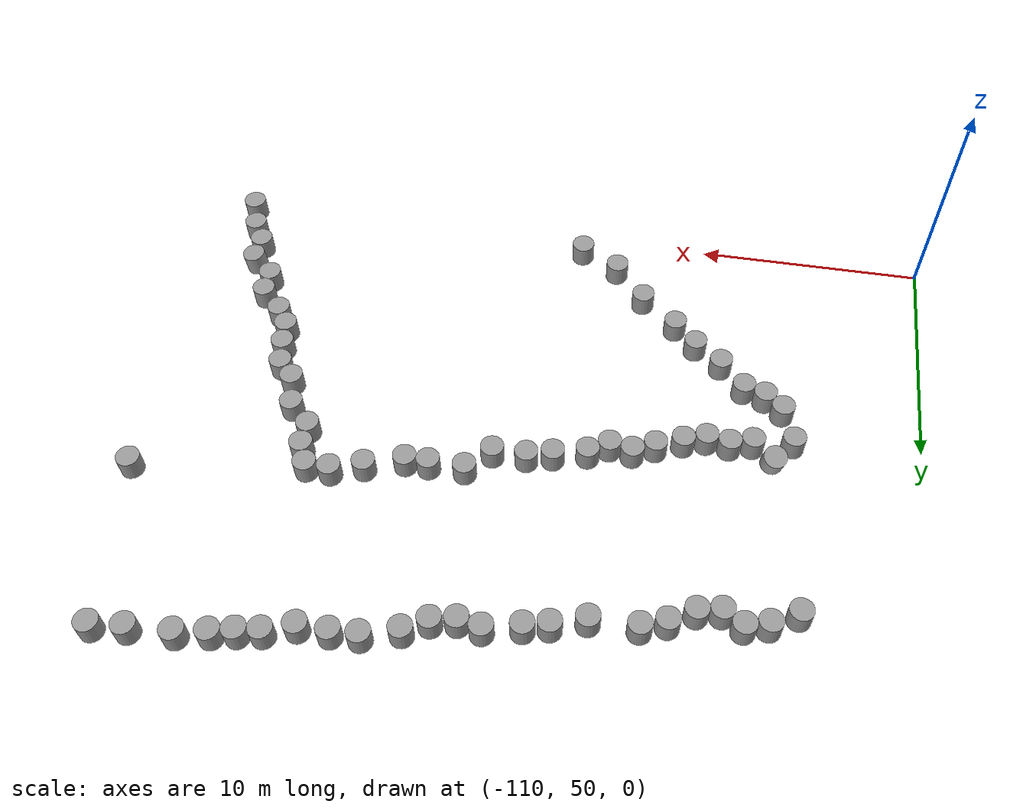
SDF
<sdf version="1.7">
 <world name="default">
  <model name="unit_cylinder_85_clone_38">
   <pose>-77.0767 65.8632 0.450095 4.5e-05 -0.000158 0.005555</pose>
   <link name="link">
    <inertial>
     <mass>1</mass>
     <inertia><ixx>0.145833</ixx><ixy>0</ixy><ixz>0</ixz><iyy>0.145833</iyy><iyz>0</iyz><izz>0.125</izz></inertia>
    </inertial>
    <collision name="collision">
     <geometry><cylinder><radius>0.5</radius><length>1</length></cylinder></geometry>
    </collision>
    <visual name="visual">
     <geometry><cylinder><radius>0.5</radius><length>1</length></cylinder></geometry>
     <material>
      <script><name>Gazebo/Grey</name><uri>file://media/materials/scripts/gazebo.material</uri></script>
     </material>
    </visual>
   </link>
  </model>
  <model name="unit_cylinder_85_clone_40">
   <pose>-84.3912 64.9055 0.449998 -5e-06 -1e-06 0.001921</pose>
   <link name="link">
    <inertial>
     <mass>1</mass>
     <inertia><ixx>0.145833</ixx><ixy>0</ixy><ixz>0</ixz><iyy>0.145833</iyy><iyz>0</iyz><izz>0.125</izz></inertia>
    </inertial>
    <collision name="collision">
     <geometry><cylinder><radius>0.5</radius><length>1</length></cylinder></geometry>
    </collision>
    <visual name="visual">
     <geometry><cylinder><radius>0.5</radius><length>1</length></cylinder></geometry>
     <material>
      <script><name>Gazebo/Grey</name><uri>file://media/materials/scripts/gazebo.material</uri></script>
     </material>
    </visual>
   </link>
  </model>
  <model name="unit_cylinder_85_clone_41">
   <pose>-85.4436 64.9334 0.449996 0 -4e-06 0.000119</pose>
   <link name="link">
    <inertial>
     <mass>1</mass>
     <inertia><ixx>0.145833</ixx><ixy>0</ixy><ixz>0</ixz><iyy>0.145833</iyy><iyz>0</iyz><izz>0.125</izz></inertia>
    </inertial>
    <collision name="collision">
     <geometry><cylinder><radius>0.5</radius><length>1</length></cylinder></geometry>
    </collision>
    <visual name="visual">
     <geometry><cylinder><radius>0.5</radius><length>1</length></cylinder></geometry>
     <material>
      <script><name>Gazebo/Grey</name><uri>file://media/materials/scripts/gazebo.material</uri></script>
     </material>
    </visual>
   </link>
  </model>
  <model name="unit_cylinder_85_clone_42">
   <pose>-86.8078 64.4998 0.449993 -2e-06 -1e-06 0.000111</pose>
   <link name="link">
    <inertial>
     <mass>1</mass>
     <inertia><ixx>0.145833</ixx><ixy>0</ixy><ixz>0</ixz><iyy>0.145833</iyy><iyz>0</iyz><izz>0.125</izz></inertia>
    </inertial>
    <collision name="collision">
     <geometry><cylinder><radius>0.5</radius><length>1</length></cylinder></geometry>
    </collision>
    <visual name="visual">
     <geometry><cylinder><radius>0.5</radius><length>1</length></cylinder></geometry>
     <material>
      <script><name>Gazebo/Grey</name><uri>file://media/materials/scripts/gazebo.material</uri></script>
     </material>
    </visual>
   </link>
  </model>
  <model name="unit_cylinder_85_clone_93">
   <pose>-78.1296 73.1813 0.452011 0.005202 0.000717 0.00035</pose>
   <link name="link">
    <inertial>
     <mass>1</mass>
     <inertia><ixx>0.145833</ixx><ixy>0</ixy><ixz>0</ixz><iyy>0.145833</iyy><iyz>0</iyz><izz>0.125</izz></inertia>
    </inertial>
    <collision name="collision">
     <geometry><cylinder><radius>0.5</radius><length>1</length></cylinder></geometry>
    </collision>
    <visual name="visual">
     <geometry><cylinder><radius>0.5</radius><length>1</length></cylinder></geometry>
     <material>
      <script><name>Gazebo/Grey</name><uri>file://media/materials/scripts/gazebo.material</uri></script>
     </material>
    </visual>
   </link>
  </model>
  <model name="unit_cylinder_85_clone_94">
   <pose>-79.5591 73.0627 0.45245 0.005256 0.000747 -0.00341</pose>
   <link name="link">
    <inertial>
     <mass>1</mass>
     <inertia><ixx>0.145833</ixx><ixy>0</ixy><ixz>0</ixz><iyy>0.145833</iyy><iyz>0</iyz><izz>0.125</izz></inertia>
    </inertial>
    <collision name="collision">
     <geometry><cylinder><radius>0.5</radius><length>1</length></cylinder></geometry>
    </collision>
    <visual name="visual">
     <geometry><cylinder><radius>0.5</radius><length>1</length></cylinder></geometry>
     <material>
      <script><name>Gazebo/Grey</name><uri>file://media/materials/scripts/gazebo.material</uri></script>
     </material>
    </visual>
   </link>
  </model>
  <model name="unit_cylinder_85_clone_95">
   <pose>-81.4504 72.9943 0.453279 0.005861 0.000808 0.000311</pose>
   <link name="link">
    <inertial>
     <mass>1</mass>
     <inertia><ixx>0.145833</ixx><ixy>0</ixy><ixz>0</ixz><iyy>0.145833</iyy><iyz>0</iyz><izz>0.125</izz></inertia>
    </inertial>
    <collision name="collision">
     <geometry><cylinder><radius>0.5</radius><length>1</length></cylinder></geometry>
    </collision>
    <visual name="visual">
     <geometry><cylinder><radius>0.5</radius><length>1</length></cylinder></geometry>
     <material>
      <script><name>Gazebo/Grey</name><uri>file://media/materials/scripts/gazebo.material</uri></script>
     </material>
    </visual>
   </link>
  </model>
  <model name="unit_cylinder_85_clone_97">
   <pose>-82.7922 72.7832 0.453133 0.005865 0.000798 0.002741</pose>
   <link name="link">
    <inertial>
     <mass>1</mass>
     <inertia><ixx>0.145833</ixx><ixy>0</ixy><ixz>0</ixz><iyy>0.145833</iyy><iyz>0</iyz><izz>0.125</izz></inertia>
    </inertial>
    <collision name="collision">
     <geometry><cylinder><radius>0.5</radius><length>1</length></cylinder></geometry>
    </collision>
    <visual name="visual">
     <geometry><cylinder><radius>0.5</radius><length>1</length></cylinder></geometry>
     <material>
      <script><name>Gazebo/Grey</name><uri>file://media/materials/scripts/gazebo.material</uri></script>
     </material>
    </visual>
   </link>
  </model>
  <model name="unit_cylinder_85_clone_96">
   <pose>-83.7734 72.5809 0.452863 0.005707 0.000753 0.032683</pose>
   <link name="link">
    <inertial>
     <mass>1</mass>
     <inertia><ixx>0.145833</ixx><ixy>0</ixy><ixz>0</ixz><iyy>0.145833</iyy><iyz>0</iyz><izz>0.125</izz></inertia>
    </inertial>
    <collision name="collision">
     <geometry><cylinder><radius>0.5</radius><length>1</length></cylinder></geometry>
    </collision>
    <visual name="visual">
     <geometry><cylinder><radius>0.5</radius><length>1</length></cylinder></geometry>
     <material>
      <script><name>Gazebo/Grey</name><uri>file://media/materials/scripts/gazebo.material</uri></script>
     </material>
    </visual>
   </link>
  </model>
  <model name="unit_cylinder_85_clone_98">
   <pose>-84.7607 72.4217 0.452878 0.005671 0.001085 -0.028994</pose>
   <link name="link">
    <inertial>
     <mass>1</mass>
     <inertia><ixx>0.145833</ixx><ixy>0</ixy><ixz>0</ixz><iyy>0.145833</iyy><iyz>0</iyz><izz>0.125</izz></inertia>
    </inertial>
    <collision name="collision">
     <geometry><cylinder><radius>0.5</radius><length>1</length></cylinder></geometry>
    </collision>
    <visual name="visual">
     <geometry><cylinder><radius>0.5</radius><length>1</length></cylinder></geometry>
     <material>
      <script><name>Gazebo/Grey</name><uri>file://media/materials/scripts/gazebo.material</uri></script>
     </material>
    </visual>
   </link>
  </model>
  <model name="unit_cylinder_85_clone_99">
   <pose>-85.9993 71.9964 0.451872 0.005151 0.000846 0.000488</pose>
   <link name="link">
    <inertial>
     <mass>1</mass>
     <inertia><ixx>0.145833</ixx><ixy>0</ixy><ixz>0</ixz><iyy>0.145833</iyy><iyz>0</iyz><izz>0.125</izz></inertia>
    </inertial>
    <collision name="collision">
     <geometry><cylinder><radius>0.5</radius><length>1</length></cylinder></geometry>
    </collision>
    <visual name="visual">
     <geometry><cylinder><radius>0.5</radius><length>1</length></cylinder></geometry>
     <material>
      <script><name>Gazebo/Grey</name><uri>file://media/materials/scripts/gazebo.material</uri></script>
     </material>
    </visual>
   </link>
  </model>
  <model name="unit_cylinder_85_clone_100">
   <pose>-87.3008 72.0388 0.45302 0.00583 0.000957 0.001585</pose>
   <link name="link">
    <inertial>
     <mass>1</mass>
     <inertia><ixx>0.145833</ixx><ixy>0</ixy><ixz>0</ixz><iyy>0.145833</iyy><iyz>0</iyz><izz>0.125</izz></inertia>
    </inertial>
    <collision name="collision">
     <geometry><cylinder><radius>0.5</radius><length>1</length></cylinder></geometry>
    </collision>
    <visual name="visual">
     <geometry><cylinder><radius>0.5</radius><length>1</length></cylinder></geometry>
     <material>
      <script><name>Gazebo/Grey</name><uri>file://media/materials/scripts/gazebo.material</uri></script>
     </material>
    </visual>
   </link>
  </model>
  <model name="unit_cylinder_85_clone_101">
   <pose>-88.4749 71.9945 0.4539 0.00583 0.000962 8.6e-05</pose>
   <link name="link">
    <inertial>
     <mass>1</mass>
     <inertia><ixx>0.145833</ixx><ixy>0</ixy><ixz>0</ixz><iyy>0.145833</iyy><iyz>0</iyz><izz>0.125</izz></inertia>
    </inertial>
    <collision name="collision">
     <geometry><cylinder><radius>0.5</radius><length>1</length></cylinder></geometry>
    </collision>
    <visual name="visual">
     <geometry><cylinder><radius>0.5</radius><length>1</length></cylinder></geometry>
     <material>
      <script><name>Gazebo/Grey</name><uri>file://media/materials/scripts/gazebo.material</uri></script>
     </material>
    </visual>
   </link>
  </model>
  <model name="unit_cylinder_85_clone_102">
   <pose>-89.9998 71.555 0.452877 0.005696 0.000924 -0.000299</pose>
   <link name="link">
    <inertial>
     <mass>1</mass>
     <inertia><ixx>0.145833</ixx><ixy>0</ixy><ixz>0</ixz><iyy>0.145833</iyy><iyz>0</iyz><izz>0.125</izz></inertia>
    </inertial>
    <collision name="collision">
     <geometry><cylinder><radius>0.5</radius><length>1</length></cylinder></geometry>
    </collision>
    <visual name="visual">
     <geometry><cylinder><radius>0.5</radius><length>1</length></cylinder></geometry>
     <material>
      <script><name>Gazebo/Grey</name><uri>file://media/materials/scripts/gazebo.material</uri></script>
     </material>
    </visual>
   </link>
  </model>
  <model name="unit_cylinder_85_clone_103">
   <pose>-90.9994 70.9965 0.45094 0.004983 0.000818 0.000192</pose>
   <link name="link">
    <inertial>
     <mass>1</mass>
     <inertia><ixx>0.145833</ixx><ixy>0</ixy><ixz>0</ixz><iyy>0.145833</iyy><iyz>0</iyz><izz>0.125</izz></inertia>
    </inertial>
    <collision name="collision">
     <geometry><cylinder><radius>0.5</radius><length>1</length></cylinder></geometry>
    </collision>
    <visual name="visual">
     <geometry><cylinder><radius>0.5</radius><length>1</length></cylinder></geometry>
     <material>
      <script><name>Gazebo/Grey</name><uri>file://media/materials/scripts/gazebo.material</uri></script>
     </material>
    </visual>
   </link>
  </model>
  <model name="unit_cylinder_85_clone_104">
   <pose>-92.0321 70.8148 0.450942 0.004951 0.000957 7.1e-05</pose>
   <link name="link">
    <inertial>
     <mass>1</mass>
     <inertia><ixx>0.145833</ixx><ixy>0</ixy><ixz>0</ixz><iyy>0.145833</iyy><iyz>0</iyz><izz>0.125</izz></inertia>
    </inertial>
    <collision name="collision">
     <geometry><cylinder><radius>0.5</radius><length>1</length></cylinder></geometry>
    </collision>
    <visual name="visual">
     <geometry><cylinder><radius>0.5</radius><length>1</length></cylinder></geometry>
     <material>
      <script><name>Gazebo/Grey</name><uri>file://media/materials/scripts/gazebo.material</uri></script>
     </material>
    </visual>
   </link>
  </model>
  <model name="unit_cylinder_85_clone_105">
   <pose>-93.0194 70.9973 0.452823 0.005547 0.001132 -0.005779</pose>
   <link name="link">
    <inertial>
     <mass>1</mass>
     <inertia><ixx>0.145833</ixx><ixy>0</ixy><ixz>0</ixz><iyy>0.145833</iyy><iyz>0</iyz><izz>0.125</izz></inertia>
    </inertial>
    <collision name="collision">
     <geometry><cylinder><radius>0.5</radius><length>1</length></cylinder></geometry>
    </collision>
    <visual name="visual">
     <geometry><cylinder><radius>0.5</radius><length>1</length></cylinder></geometry>
     <material>
      <script><name>Gazebo/Grey</name><uri>file://media/materials/scripts/gazebo.material</uri></script>
     </material>
    </visual>
   </link>
  </model>
  <model name="unit_cylinder_85_clone_106">
   <pose>-94.5551 70.6722 0.452749 0.005421 0.001063 0.000281</pose>
   <link name="link">
    <inertial>
     <mass>1</mass>
     <inertia><ixx>0.145833</ixx><ixy>0</ixy><ixz>0</ixz><iyy>0.145833</iyy><iyz>0</iyz><izz>0.125</izz></inertia>
    </inertial>
    <collision name="collision">
     <geometry><cylinder><radius>0.5</radius><length>1</length></cylinder></geometry>
    </collision>
    <visual name="visual">
     <geometry><cylinder><radius>0.5</radius><length>1</length></cylinder></geometry>
     <material>
      <script><name>Gazebo/Grey</name><uri>file://media/materials/scripts/gazebo.material</uri></script>
     </material>
    </visual>
   </link>
  </model>
  <model name="unit_cylinder_85_clone_107">
   <pose>-95.583 70.443 0.452675 0.005259 0.001063 -0.002305</pose>
   <link name="link">
    <inertial>
     <mass>1</mass>
     <inertia><ixx>0.145833</ixx><ixy>0</ixy><ixz>0</ixz><iyy>0.145833</iyy><iyz>0</iyz><izz>0.125</izz></inertia>
    </inertial>
    <collision name="collision">
     <geometry><cylinder><radius>0.5</radius><length>1</length></cylinder></geometry>
    </collision>
    <visual name="visual">
     <geometry><cylinder><radius>0.5</radius><length>1</length></cylinder></geometry>
     <material>
      <script><name>Gazebo/Grey</name><uri>file://media/materials/scripts/gazebo.material</uri></script>
     </material>
    </visual>
   </link>
  </model>
  <model name="unit_cylinder_85_clone_108">
   <pose>-96.9992 69.9965 0.451776 0.005114 0.001002 0.000523</pose>
   <link name="link">
    <inertial>
     <mass>1</mass>
     <inertia><ixx>0.145833</ixx><ixy>0</ixy><ixz>0</ixz><iyy>0.145833</iyy><iyz>0</iyz><izz>0.125</izz></inertia>
    </inertial>
    <collision name="collision">
     <geometry><cylinder><radius>0.5</radius><length>1</length></cylinder></geometry>
    </collision>
    <visual name="visual">
     <geometry><cylinder><radius>0.5</radius><length>1</length></cylinder></geometry>
     <material>
      <script><name>Gazebo/Grey</name><uri>file://media/materials/scripts/gazebo.material</uri></script>
     </material>
    </visual>
   </link>
  </model>
  <model name="unit_cylinder_85_clone_109">
   <pose>-98.9985 69.9948 0.453684 0.005804 0.001133 0.00109</pose>
   <link name="link">
    <inertial>
     <mass>1</mass>
     <inertia><ixx>0.145833</ixx><ixy>0</ixy><ixz>0</ixz><iyy>0.145833</iyy><iyz>0</iyz><izz>0.125</izz></inertia>
    </inertial>
    <collision name="collision">
     <geometry><cylinder><radius>0.5</radius><length>1</length></cylinder></geometry>
    </collision>
    <visual name="visual">
     <geometry><cylinder><radius>0.5</radius><length>1</length></cylinder></geometry>
     <material>
      <script><name>Gazebo/Grey</name><uri>file://media/materials/scripts/gazebo.material</uri></script>
     </material>
    </visual>
   </link>
  </model>
  <model name="unit_cylinder_85_clone_110">
   <pose>-100.04 69.632 0.452863 0.005634 0.001106 0.001092</pose>
   <link name="link">
    <inertial>
     <mass>1</mass>
     <inertia><ixx>0.145833</ixx><ixy>0</ixy><ixz>0</ixz><iyy>0.145833</iyy><iyz>0</iyz><izz>0.125</izz></inertia>
    </inertial>
    <collision name="collision">
     <geometry><cylinder><radius>0.5</radius><length>1</length></cylinder></geometry>
    </collision>
    <visual name="visual">
     <geometry><cylinder><radius>0.5</radius><length>1</length></cylinder></geometry>
     <material>
      <script><name>Gazebo/Grey</name><uri>file://media/materials/scripts/gazebo.material</uri></script>
     </material>
    </visual>
   </link>
  </model>
  <model name="unit_cylinder_85_clone_111">
   <pose>-101.092 69.0269 0.450905 0.00376 0.00334 -0.52853</pose>
   <link name="link">
    <inertial>
     <mass>1</mass>
     <inertia><ixx>0.145833</ixx><ixy>0</ixy><ixz>0</ixz><iyy>0.145833</iyy><iyz>0</iyz><izz>0.125</izz></inertia>
    </inertial>
    <collision name="collision">
     <geometry><cylinder><radius>0.5</radius><length>1</length></cylinder></geometry>
    </collision>
    <visual name="visual">
     <geometry><cylinder><radius>0.5</radius><length>1</length></cylinder></geometry>
     <material>
      <script><name>Gazebo/Grey</name><uri>file://media/materials/scripts/gazebo.material</uri></script>
     </material>
    </visual>
   </link>
  </model>
  <model name="unit_cylinder_85_clone_112">
   <pose>-102.079 68.8682 0.451231 0.004764 0.003261 -0.405672</pose>
   <link name="link">
    <inertial>
     <mass>1</mass>
     <inertia><ixx>0.145833</ixx><ixy>0</ixy><ixz>0</ixz><iyy>0.145833</iyy><iyz>0</iyz><izz>0.125</izz></inertia>
    </inertial>
    <collision name="collision">
     <geometry><cylinder><radius>0.5</radius><length>1</length></cylinder></geometry>
    </collision>
    <visual name="visual">
     <geometry><cylinder><radius>0.5</radius><length>1</length></cylinder></geometry>
     <material>
      <script><name>Gazebo/Grey</name><uri>file://media/materials/scripts/gazebo.material</uri></script>
     </material>
    </visual>
   </link>
  </model>
  <model name="unit_cylinder_85_clone_113">
   <pose>-102.942 69.3733 0.454615 0.005033 0.002991 -0.356805</pose>
   <link name="link">
    <inertial>
     <mass>1</mass>
     <inertia><ixx>0.145833</ixx><ixy>0</ixy><ixz>0</ixz><iyy>0.145833</iyy><iyz>0</iyz><izz>0.125</izz></inertia>
    </inertial>
    <collision name="collision">
     <geometry><cylinder><radius>0.5</radius><length>1</length></cylinder></geometry>
    </collision>
    <visual name="visual">
     <geometry><cylinder><radius>0.5</radius><length>1</length></cylinder></geometry>
     <material>
      <script><name>Gazebo/Grey</name><uri>file://media/materials/scripts/gazebo.material</uri></script>
     </material>
    </visual>
   </link>
  </model>
  <model name="unit_cylinder_85_clone_114">
   <pose>-103.922 69.1334 0.454307 0.00588 0.000645 0.084282</pose>
   <link name="link">
    <inertial>
     <mass>1</mass>
     <inertia><ixx>0.145833</ixx><ixy>0</ixy><ixz>0</ixz><iyy>0.145833</iyy><iyz>0</iyz><izz>0.125</izz></inertia>
    </inertial>
    <collision name="collision">
     <geometry><cylinder><radius>0.5</radius><length>1</length></cylinder></geometry>
    </collision>
    <visual name="visual">
     <geometry><cylinder><radius>0.5</radius><length>1</length></cylinder></geometry>
     <material>
      <script><name>Gazebo/Grey</name><uri>file://media/materials/scripts/gazebo.material</uri></script>
     </material>
    </visual>
   </link>
  </model>
  <model name="unit_cylinder_85_clone_115">
   <pose>-105.056 68.5035 0.452269 0.005151 0.001088 -0.007741</pose>
   <link name="link">
    <inertial>
     <mass>1</mass>
     <inertia><ixx>0.145833</ixx><ixy>0</ixy><ixz>0</ixz><iyy>0.145833</iyy><iyz>0</iyz><izz>0.125</izz></inertia>
    </inertial>
    <collision name="collision">
     <geometry><cylinder><radius>0.5</radius><length>1</length></cylinder></geometry>
    </collision>
    <visual name="visual">
     <geometry><cylinder><radius>0.5</radius><length>1</length></cylinder></geometry>
     <material>
      <script><name>Gazebo/Grey</name><uri>file://media/materials/scripts/gazebo.material</uri></script>
     </material>
    </visual>
   </link>
  </model>
  <model name="unit_cylinder_85_clone_117">
   <pose>-88.4563 63.9931 0.45 0 -0 0.011272</pose>
   <link name="link">
    <inertial>
     <mass>1</mass>
     <inertia><ixx>0.145833</ixx><ixy>0</ixy><ixz>0</ixz><iyy>0.145833</iyy><iyz>0</iyz><izz>0.125</izz></inertia>
    </inertial>
    <collision name="collision">
     <geometry><cylinder><radius>0.5</radius><length>1</length></cylinder></geometry>
    </collision>
    <visual name="visual">
     <geometry><cylinder><radius>0.5</radius><length>1</length></cylinder></geometry>
     <material>
      <script><name>Gazebo/Grey</name><uri>file://media/materials/scripts/gazebo.material</uri></script>
     </material>
    </visual>
   </link>
  </model>
  <model name="unit_cylinder_85_clone_118">
   <pose>-89.4563 63.9946 0.449991 -0 -0 -0.012185</pose>
   <link name="link">
    <inertial>
     <mass>1</mass>
     <inertia><ixx>0.145833</ixx><ixy>0</ixy><ixz>0</ixz><iyy>0.145833</iyy><iyz>0</iyz><izz>0.125</izz></inertia>
    </inertial>
    <collision name="collision">
     <geometry><cylinder><radius>0.5</radius><length>1</length></cylinder></geometry>
    </collision>
    <visual name="visual">
     <geometry><cylinder><radius>0.5</radius><length>1</length></cylinder></geometry>
     <material>
      <script><name>Gazebo/Grey</name><uri>file://media/materials/scripts/gazebo.material</uri></script>
     </material>
    </visual>
   </link>
  </model>
  <model name="unit_cylinder_85_clone_119">
   <pose>-91.0001 64.0005 0.450021 -7.2e-05 2e-05 0.001624</pose>
   <link name="link">
    <inertial>
     <mass>1</mass>
     <inertia><ixx>0.145833</ixx><ixy>0</ixy><ixz>0</ixz><iyy>0.145833</iyy><iyz>0</iyz><izz>0.125</izz></inertia>
    </inertial>
    <collision name="collision">
     <geometry><cylinder><radius>0.5</radius><length>1</length></cylinder></geometry>
    </collision>
    <visual name="visual">
     <geometry><cylinder><radius>0.5</radius><length>1</length></cylinder></geometry>
     <material>
      <script><name>Gazebo/Grey</name><uri>file://media/materials/scripts/gazebo.material</uri></script>
     </material>
    </visual>
   </link>
  </model>
  <model name="unit_cylinder_85_clone_120">
   <pose>-91.9996 63.0003 0.450116 -4.4e-05 6.9e-05 0.000724</pose>
   <link name="link">
    <inertial>
     <mass>1</mass>
     <inertia><ixx>0.145833</ixx><ixy>0</ixy><ixz>0</ixz><iyy>0.145833</iyy><iyz>0</iyz><izz>0.125</izz></inertia>
    </inertial>
    <collision name="collision">
     <geometry><cylinder><radius>0.5</radius><length>1</length></cylinder></geometry>
    </collision>
    <visual name="visual">
     <geometry><cylinder><radius>0.5</radius><length>1</length></cylinder></geometry>
     <material>
      <script><name>Gazebo/Grey</name><uri>file://media/materials/scripts/gazebo.material</uri></script>
     </material>
    </visual>
   </link>
  </model>
  <model name="unit_cylinder_85_clone_121">
   <pose>-93.4527 63.0001 0.450234 -5e-05 7.8e-05 0.000248</pose>
   <link name="link">
    <inertial>
     <mass>1</mass>
     <inertia><ixx>0.145833</ixx><ixy>0</ixy><ixz>0</ixz><iyy>0.145833</iyy><iyz>0</iyz><izz>0.125</izz></inertia>
    </inertial>
    <collision name="collision">
     <geometry><cylinder><radius>0.5</radius><length>1</length></cylinder></geometry>
    </collision>
    <visual name="visual">
     <geometry><cylinder><radius>0.5</radius><length>1</length></cylinder></geometry>
     <material>
      <script><name>Gazebo/Grey</name><uri>file://media/materials/scripts/gazebo.material</uri></script>
     </material>
    </visual>
   </link>
  </model>
  <model name="unit_cylinder_85_clone_122">
   <pose>-94.5421 62.754 0.450328 -5e-05 7.3e-05 -0.023637</pose>
   <link name="link">
    <inertial>
     <mass>1</mass>
     <inertia><ixx>0.145833</ixx><ixy>0</ixy><ixz>0</ixz><iyy>0.145833</iyy><iyz>0</iyz><izz>0.125</izz></inertia>
    </inertial>
    <collision name="collision">
     <geometry><cylinder><radius>0.5</radius><length>1</length></cylinder></geometry>
    </collision>
    <visual name="visual">
     <geometry><cylinder><radius>0.5</radius><length>1</length></cylinder></geometry>
     <material>
      <script><name>Gazebo/Grey</name><uri>file://media/materials/scripts/gazebo.material</uri></script>
     </material>
    </visual>
   </link>
  </model>
  <model name="unit_cylinder_85_clone_124">
   <pose>-95.9769 62.4281 0.450394 -0.000743 -6.2e-05 0.0949</pose>
   <link name="link">
    <inertial>
     <mass>1</mass>
     <inertia><ixx>0.145833</ixx><ixy>0</ixy><ixz>0</ixz><iyy>0.145833</iyy><iyz>0</iyz><izz>0.125</izz></inertia>
    </inertial>
    <collision name="collision">
     <geometry><cylinder><radius>0.5</radius><length>1</length></cylinder></geometry>
    </collision>
    <visual name="visual">
     <geometry><cylinder><radius>0.5</radius><length>1</length></cylinder></geometry>
     <material>
      <script><name>Gazebo/Grey</name><uri>file://media/materials/scripts/gazebo.material</uri></script>
     </material>
    </visual>
   </link>
  </model>
  <model name="unit_cylinder_85_clone_125">
   <pose>-96.8488 61.9373 0.450539 -4.8e-05 7.1e-05 -0.02449</pose>
   <link name="link">
    <inertial>
     <mass>1</mass>
     <inertia><ixx>0.145833</ixx><ixy>0</ixy><ixz>0</ixz><iyy>0.145833</iyy><iyz>0</iyz><izz>0.125</izz></inertia>
    </inertial>
    <collision name="collision">
     <geometry><cylinder><radius>0.5</radius><length>1</length></cylinder></geometry>
    </collision>
    <visual name="visual">
     <geometry><cylinder><radius>0.5</radius><length>1</length></cylinder></geometry>
     <material>
      <script><name>Gazebo/Grey</name><uri>file://media/materials/scripts/gazebo.material</uri></script>
     </material>
    </visual>
   </link>
  </model>
  <model name="unit_cylinder_85_clone_126">
   <pose>-97.8363 62.0978 0.450337 -0.000773 -0.000198 -0.010846</pose>
   <link name="link">
    <inertial>
     <mass>1</mass>
     <inertia><ixx>0.145833</ixx><ixy>0</ixy><ixz>0</ixz><iyy>0.145833</iyy><iyz>0</iyz><izz>0.125</izz></inertia>
    </inertial>
    <collision name="collision">
     <geometry><cylinder><radius>0.5</radius><length>1</length></cylinder></geometry>
    </collision>
    <visual name="visual">
     <geometry><cylinder><radius>0.5</radius><length>1</length></cylinder></geometry>
     <material>
      <script><name>Gazebo/Grey</name><uri>file://media/materials/scripts/gazebo.material</uri></script>
     </material>
    </visual>
   </link>
  </model>
  <model name="unit_cylinder_85_clone_123">
   <pose>-98.7707 61.6638 0.450486 -0.000877 -0.000202 0.000233</pose>
   <link name="link">
    <inertial>
     <mass>1</mass>
     <inertia><ixx>0.145833</ixx><ixy>0</ixy><ixz>0</ixz><iyy>0.145833</iyy><iyz>0</iyz><izz>0.125</izz></inertia>
    </inertial>
    <collision name="collision">
     <geometry><cylinder><radius>0.5</radius><length>1</length></cylinder></geometry>
    </collision>
    <visual name="visual">
     <geometry><cylinder><radius>0.5</radius><length>1</length></cylinder></geometry>
     <material>
      <script><name>Gazebo/Grey</name><uri>file://media/materials/scripts/gazebo.material</uri></script>
     </material>
    </visual>
   </link>
  </model>
  <model name="unit_cylinder_85_clone_127">
   <pose>-99.9095 61.2462 0.450619 -0.000884 -0.000186 0.019566</pose>
   <link name="link">
    <inertial>
     <mass>1</mass>
     <inertia><ixx>0.145833</ixx><ixy>0</ixy><ixz>0</ixz><iyy>0.145833</iyy><iyz>0</iyz><izz>0.125</izz></inertia>
    </inertial>
    <collision name="collision">
     <geometry><cylinder><radius>0.5</radius><length>1</length></cylinder></geometry>
    </collision>
    <visual name="visual">
     <geometry><cylinder><radius>0.5</radius><length>1</length></cylinder></geometry>
     <material>
      <script><name>Gazebo/Grey</name><uri>file://media/materials/scripts/gazebo.material</uri></script>
     </material>
    </visual>
   </link>
  </model>
  <model name="unit_cylinder_85_clone_128">
   <pose>-100.877 60.961 0.450673 -0.000882 -0.000212 -0.014753</pose>
   <link name="link">
    <inertial>
     <mass>1</mass>
     <inertia><ixx>0.145833</ixx><ixy>0</ixy><ixz>0</ixz><iyy>0.145833</iyy><iyz>0</iyz><izz>0.125</izz></inertia>
    </inertial>
    <collision name="collision">
     <geometry><cylinder><radius>0.5</radius><length>1</length></cylinder></geometry>
    </collision>
    <visual name="visual">
     <geometry><cylinder><radius>0.5</radius><length>1</length></cylinder></geometry>
     <material>
      <script><name>Gazebo/Grey</name><uri>file://media/materials/scripts/gazebo.material</uri></script>
     </material>
    </visual>
   </link>
  </model>
  <model name="unit_cylinder_85_clone_129">
   <pose>-101.867 61.1022 0.450404 -0.000778 -0.000215 -0.051182</pose>
   <link name="link">
    <inertial>
     <mass>1</mass>
     <inertia><ixx>0.145833</ixx><ixy>0</ixy><ixz>0</ixz><iyy>0.145833</iyy><iyz>0</iyz><izz>0.125</izz></inertia>
    </inertial>
    <collision name="collision">
     <geometry><cylinder><radius>0.5</radius><length>1</length></cylinder></geometry>
    </collision>
    <visual name="visual">
     <geometry><cylinder><radius>0.5</radius><length>1</length></cylinder></geometry>
     <material>
      <script><name>Gazebo/Grey</name><uri>file://media/materials/scripts/gazebo.material</uri></script>
     </material>
    </visual>
   </link>
  </model>
  <model name="unit_cylinder_85_clone_130">
   <pose>-102.838 60.8621 0.450403 -0.0008 -0.000203 -0.018967</pose>
   <link name="link">
    <inertial>
     <mass>1</mass>
     <inertia><ixx>0.145833</ixx><ixy>0</ixy><ixz>0</ixz><iyy>0.145833</iyy><iyz>0</iyz><izz>0.125</izz></inertia>
    </inertial>
    <collision name="collision">
     <geometry><cylinder><radius>0.5</radius><length>1</length></cylinder></geometry>
    </collision>
    <visual name="visual">
     <geometry><cylinder><radius>0.5</radius><length>1</length></cylinder></geometry>
     <material>
      <script><name>Gazebo/Grey</name><uri>file://media/materials/scripts/gazebo.material</uri></script>
     </material>
    </visual>
   </link>
  </model>
  <model name="unit_cylinder_85_clone_131">
   <pose>-103.761 61.508 0.373412 -0.293913 -0.003838 0.211421</pose>
   <link name="link">
    <inertial>
     <mass>1</mass>
     <inertia><ixx>0.145833</ixx><ixy>0</ixy><ixz>0</ixz><iyy>0.145833</iyy><iyz>0</iyz><izz>0.125</izz></inertia>
    </inertial>
    <collision name="collision">
     <geometry><cylinder><radius>0.5</radius><length>1</length></cylinder></geometry>
    </collision>
    <visual name="visual">
     <geometry><cylinder><radius>0.5</radius><length>1</length></cylinder></geometry>
     <material>
      <script><name>Gazebo/Grey</name><uri>file://media/materials/scripts/gazebo.material</uri></script>
     </material>
    </visual>
   </link>
  </model>
  <model name="unit_cylinder_85_clone_132">
   <pose>-104.544 60.5564 0.450337 -0.000786 -0.000203 -0.028828</pose>
   <link name="link">
    <inertial>
     <mass>1</mass>
     <inertia><ixx>0.145833</ixx><ixy>0</ixy><ixz>0</ixz><iyy>0.145833</iyy><iyz>0</iyz><izz>0.125</izz></inertia>
    </inertial>
    <collision name="collision">
     <geometry><cylinder><radius>0.5</radius><length>1</length></cylinder></geometry>
    </collision>
    <visual name="visual">
     <geometry><cylinder><radius>0.5</radius><length>1</length></cylinder></geometry>
     <material>
      <script><name>Gazebo/Grey</name><uri>file://media/materials/scripts/gazebo.material</uri></script>
     </material>
    </visual>
   </link>
  </model>
  <model name="unit_cylinder_85_clone_136">
   <pose>-83.9891 63.9895 0.45 0 0 -0.002695</pose>
   <link name="link">
    <inertial>
     <mass>1</mass>
     <inertia><ixx>0.145833</ixx><ixy>0</ixy><ixz>0</ixz><iyy>0.145833</iyy><iyz>0</iyz><izz>0.125</izz></inertia>
    </inertial>
    <collision name="collision">
     <geometry><cylinder><radius>0.5</radius><length>1</length></cylinder></geometry>
    </collision>
    <visual name="visual">
     <geometry><cylinder><radius>0.5</radius><length>1</length></cylinder></geometry>
     <material>
      <script><name>Gazebo/Grey</name><uri>file://media/materials/scripts/gazebo.material</uri></script>
     </material>
    </visual>
   </link>
  </model>
  <model name="unit_cylinder_85_clone_137">
   <pose>-84.0001 62.9893 0.450001 -0 1e-06 0.000607</pose>
   <link name="link">
    <inertial>
     <mass>1</mass>
     <inertia><ixx>0.145833</ixx><ixy>0</ixy><ixz>0</ixz><iyy>0.145833</iyy><iyz>0</iyz><izz>0.125</izz></inertia>
    </inertial>
    <collision name="collision">
     <geometry><cylinder><radius>0.5</radius><length>1</length></cylinder></geometry>
    </collision>
    <visual name="visual">
     <geometry><cylinder><radius>0.5</radius><length>1</length></cylinder></geometry>
     <material>
      <script><name>Gazebo/Grey</name><uri>file://media/materials/scripts/gazebo.material</uri></script>
     </material>
    </visual>
   </link>
  </model>
  <model name="unit_cylinder_85_clone_138">
   <pose>-82.9999 62.0002 0.449998 7e-06 -1e-06 0.000306</pose>
   <link name="link">
    <inertial>
     <mass>1</mass>
     <inertia><ixx>0.145833</ixx><ixy>0</ixy><ixz>0</ixz><iyy>0.145833</iyy><iyz>0</iyz><izz>0.125</izz></inertia>
    </inertial>
    <collision name="collision">
     <geometry><cylinder><radius>0.5</radius><length>1</length></cylinder></geometry>
    </collision>
    <visual name="visual">
     <geometry><cylinder><radius>0.5</radius><length>1</length></cylinder></geometry>
     <material>
      <script><name>Gazebo/Grey</name><uri>file://media/materials/scripts/gazebo.material</uri></script>
     </material>
    </visual>
   </link>
  </model>
  <model name="unit_cylinder_85_clone_139">
   <pose>-82.631 60.659 0.44999 0 0 -0.000565</pose>
   <link name="link">
    <inertial>
     <mass>1</mass>
     <inertia><ixx>0.145833</ixx><ixy>0</ixy><ixz>0</ixz><iyy>0.145833</iyy><iyz>0</iyz><izz>0.125</izz></inertia>
    </inertial>
    <collision name="collision">
     <geometry><cylinder><radius>0.5</radius><length>1</length></cylinder></geometry>
    </collision>
    <visual name="visual">
     <geometry><cylinder><radius>0.5</radius><length>1</length></cylinder></geometry>
     <material>
      <script><name>Gazebo/Grey</name><uri>file://media/materials/scripts/gazebo.material</uri></script>
     </material>
    </visual>
   </link>
  </model>
  <model name="unit_cylinder_85_clone_140">
   <pose>-81.9203 59.9175 0.45 0 -0 0.000292</pose>
   <link name="link">
    <inertial>
     <mass>1</mass>
     <inertia><ixx>0.145833</ixx><ixy>0</ixy><ixz>0</ixz><iyy>0.145833</iyy><iyz>0</iyz><izz>0.125</izz></inertia>
    </inertial>
    <collision name="collision">
     <geometry><cylinder><radius>0.5</radius><length>1</length></cylinder></geometry>
    </collision>
    <visual name="visual">
     <geometry><cylinder><radius>0.5</radius><length>1</length></cylinder></geometry>
     <material>
      <script><name>Gazebo/Grey</name><uri>file://media/materials/scripts/gazebo.material</uri></script>
     </material>
    </visual>
   </link>
  </model>
  <model name="unit_cylinder_85_clone_141">
   <pose>-81.5638 57.8307 0.450003 -5e-06 -3e-06 0.001056</pose>
   <link name="link">
    <inertial>
     <mass>1</mass>
     <inertia><ixx>0.145833</ixx><ixy>0</ixy><ixz>0</ixz><iyy>0.145833</iyy><iyz>0</iyz><izz>0.125</izz></inertia>
    </inertial>
    <collision name="collision">
     <geometry><cylinder><radius>0.5</radius><length>1</length></cylinder></geometry>
    </collision>
    <visual name="visual">
     <geometry><cylinder><radius>0.5</radius><length>1</length></cylinder></geometry>
     <material>
      <script><name>Gazebo/Grey</name><uri>file://media/materials/scripts/gazebo.material</uri></script>
     </material>
    </visual>
   </link>
  </model>
  <model name="unit_cylinder_85_clone_142">
   <pose>-80.9998 57.0003 0.45 0 -0 0.000538</pose>
   <link name="link">
    <inertial>
     <mass>1</mass>
     <inertia><ixx>0.145833</ixx><ixy>0</ixy><ixz>0</ixz><iyy>0.145833</iyy><iyz>0</iyz><izz>0.125</izz></inertia>
    </inertial>
    <collision name="collision">
     <geometry><cylinder><radius>0.5</radius><length>1</length></cylinder></geometry>
    </collision>
    <visual name="visual">
     <geometry><cylinder><radius>0.5</radius><length>1</length></cylinder></geometry>
     <material>
      <script><name>Gazebo/Grey</name><uri>file://media/materials/scripts/gazebo.material</uri></script>
     </material>
    </visual>
   </link>
  </model>
  <model name="unit_cylinder_85_clone_143">
   <pose>-80 56 0.449998 -5e-06 4e-06 0.00026</pose>
   <link name="link">
    <inertial>
     <mass>1</mass>
     <inertia><ixx>0.145833</ixx><ixy>0</ixy><ixz>0</ixz><iyy>0.145833</iyy><iyz>0</iyz><izz>0.125</izz></inertia>
    </inertial>
    <collision name="collision">
     <geometry><cylinder><radius>0.5</radius><length>1</length></cylinder></geometry>
    </collision>
    <visual name="visual">
     <geometry><cylinder><radius>0.5</radius><length>1</length></cylinder></geometry>
     <material>
      <script><name>Gazebo/Grey</name><uri>file://media/materials/scripts/gazebo.material</uri></script>
     </material>
    </visual>
   </link>
  </model>
  <model name="unit_cylinder_85_clone_144">
   <pose>-80 55 0.449997 -1e-06 4e-06 0.000245</pose>
   <link name="link">
    <inertial>
     <mass>1</mass>
     <inertia><ixx>0.145833</ixx><ixy>0</ixy><ixz>0</ixz><iyy>0.145833</iyy><iyz>0</iyz><izz>0.125</izz></inertia>
    </inertial>
    <collision name="collision">
     <geometry><cylinder><radius>0.5</radius><length>1</length></cylinder></geometry>
    </collision>
    <visual name="visual">
     <geometry><cylinder><radius>0.5</radius><length>1</length></cylinder></geometry>
     <material>
      <script><name>Gazebo/Grey</name><uri>file://media/materials/scripts/gazebo.material</uri></script>
     </material>
    </visual>
   </link>
  </model>
  <model name="unit_cylinder_85_clone_145">
   <pose>-79 53 0.44999 0 -0 0.00026</pose>
   <link name="link">
    <inertial>
     <mass>1</mass>
     <inertia><ixx>0.145833</ixx><ixy>0</ixy><ixz>0</ixz><iyy>0.145833</iyy><iyz>0</iyz><izz>0.125</izz></inertia>
    </inertial>
    <collision name="collision">
     <geometry><cylinder><radius>0.5</radius><length>1</length></cylinder></geometry>
    </collision>
    <visual name="visual">
     <geometry><cylinder><radius>0.5</radius><length>1</length></cylinder></geometry>
     <material>
      <script><name>Gazebo/Grey</name><uri>file://media/materials/scripts/gazebo.material</uri></script>
     </material>
    </visual>
   </link>
  </model>
  <model name="unit_cylinder_85_clone_146">
   <pose>-78.4183 52 0.449998 -5e-06 4e-06 0.000256</pose>
   <link name="link">
    <inertial>
     <mass>1</mass>
     <inertia><ixx>0.145833</ixx><ixy>0</ixy><ixz>0</ixz><iyy>0.145833</iyy><iyz>0</iyz><izz>0.125</izz></inertia>
    </inertial>
    <collision name="collision">
     <geometry><cylinder><radius>0.5</radius><length>1</length></cylinder></geometry>
    </collision>
    <visual name="visual">
     <geometry><cylinder><radius>0.5</radius><length>1</length></cylinder></geometry>
     <material>
      <script><name>Gazebo/Grey</name><uri>file://media/materials/scripts/gazebo.material</uri></script>
     </material>
    </visual>
   </link>
  </model>
  <model name="unit_cylinder_85_clone_147">
   <pose>-77.9713 50.6504 0.450009 -6e-06 1.5e-05 0.000252</pose>
   <link name="link">
    <inertial>
     <mass>1</mass>
     <inertia><ixx>0.145833</ixx><ixy>0</ixy><ixz>0</ixz><iyy>0.145833</iyy><iyz>0</iyz><izz>0.125</izz></inertia>
    </inertial>
    <collision name="collision">
     <geometry><cylinder><radius>0.5</radius><length>1</length></cylinder></geometry>
    </collision>
    <visual name="visual">
     <geometry><cylinder><radius>0.5</radius><length>1</length></cylinder></geometry>
     <material>
      <script><name>Gazebo/Grey</name><uri>file://media/materials/scripts/gazebo.material</uri></script>
     </material>
    </visual>
   </link>
  </model>
  <model name="unit_cylinder_85_clone_148">
   <pose>-78.959 54.0206 0.437174 -0.028097 0.074111 -0.006378</pose>
   <link name="link">
    <inertial>
     <mass>1</mass>
     <inertia><ixx>0.145833</ixx><ixy>0</ixy><ixz>0</ixz><iyy>0.145833</iyy><iyz>0</iyz><izz>0.125</izz></inertia>
    </inertial>
    <collision name="collision">
     <geometry><cylinder><radius>0.5</radius><length>1</length></cylinder></geometry>
    </collision>
    <visual name="visual">
     <geometry><cylinder><radius>0.5</radius><length>1</length></cylinder></geometry>
     <material>
      <script><name>Gazebo/Grey</name><uri>file://media/materials/scripts/gazebo.material</uri></script>
     </material>
    </visual>
   </link>
  </model>
  <model name="unit_cylinder_85_clone_159">
   <pose>-81.6966 58.8353 0.450001 2e-06 -0 0.006724</pose>
   <link name="link">
    <inertial>
     <mass>1</mass>
     <inertia><ixx>0.145833</ixx><ixy>0</ixy><ixz>0</ixz><iyy>0.145833</iyy><iyz>0</iyz><izz>0.125</izz></inertia>
    </inertial>
    <collision name="collision">
     <geometry><cylinder><radius>0.5</radius><length>1</length></cylinder></geometry>
    </collision>
    <visual name="visual">
     <geometry><cylinder><radius>0.5</radius><length>1</length></cylinder></geometry>
     <material>
      <script><name>Gazebo/Grey</name><uri>file://media/materials/scripts/gazebo.material</uri></script>
     </material>
    </visual>
   </link>
  </model>
  <model name="unit_cylinder_85_clone_170">
   <pose>-94.2583 51.0424 0.450556 4.3e-05 3.2e-05 0.000706</pose>
   <link name="link">
    <inertial>
     <mass>1</mass>
     <inertia><ixx>0.145833</ixx><ixy>0</ixy><ixz>0</ixz><iyy>0.145833</iyy><iyz>0</iyz><izz>0.125</izz></inertia>
    </inertial>
    <collision name="collision">
     <geometry><cylinder><radius>0.5</radius><length>1</length></cylinder></geometry>
    </collision>
    <visual name="visual">
     <geometry><cylinder><radius>0.5</radius><length>1</length></cylinder></geometry>
     <material>
      <script><name>Gazebo/Grey</name><uri>file://media/materials/scripts/gazebo.material</uri></script>
     </material>
    </visual>
   </link>
  </model>
  <model name="unit_cylinder_85_clone_171">
   <pose>-95.9996 52.0002 0.451034 -0.000559 0.000498 0.000957</pose>
   <link name="link">
    <inertial>
     <mass>1</mass>
     <inertia><ixx>0.145833</ixx><ixy>0</ixy><ixz>0</ixz><iyy>0.145833</iyy><iyz>0</iyz><izz>0.125</izz></inertia>
    </inertial>
    <collision name="collision">
     <geometry><cylinder><radius>0.5</radius><length>1</length></cylinder></geometry>
    </collision>
    <visual name="visual">
     <geometry><cylinder><radius>0.5</radius><length>1</length></cylinder></geometry>
     <material>
      <script><name>Gazebo/Grey</name><uri>file://media/materials/scripts/gazebo.material</uri></script>
     </material>
    </visual>
   </link>
  </model>
  <model name="unit_cylinder_85_clone_172">
   <pose>-97.3958 53.6477 0.450772 4.4e-05 3.3e-05 0.000592</pose>
   <link name="link">
    <inertial>
     <mass>1</mass>
     <inertia><ixx>0.145833</ixx><ixy>0</ixy><ixz>0</ixz><iyy>0.145833</iyy><iyz>0</iyz><izz>0.125</izz></inertia>
    </inertial>
    <collision name="collision">
     <geometry><cylinder><radius>0.5</radius><length>1</length></cylinder></geometry>
    </collision>
    <visual name="visual">
     <geometry><cylinder><radius>0.5</radius><length>1</length></cylinder></geometry>
     <material>
      <script><name>Gazebo/Grey</name><uri>file://media/materials/scripts/gazebo.material</uri></script>
     </material>
    </visual>
   </link>
  </model>
  <model name="unit_cylinder_85_clone_173">
   <pose>-98.9995 55.0003 0.450882 4.4e-05 3.2e-05 0.000524</pose>
   <link name="link">
    <inertial>
     <mass>1</mass>
     <inertia><ixx>0.145833</ixx><ixy>0</ixy><ixz>0</ixz><iyy>0.145833</iyy><iyz>0</iyz><izz>0.125</izz></inertia>
    </inertial>
    <collision name="collision">
     <geometry><cylinder><radius>0.5</radius><length>1</length></cylinder></geometry>
    </collision>
    <visual name="visual">
     <geometry><cylinder><radius>0.5</radius><length>1</length></cylinder></geometry>
     <material>
      <script><name>Gazebo/Grey</name><uri>file://media/materials/scripts/gazebo.material</uri></script>
     </material>
    </visual>
   </link>
  </model>
  <model name="unit_cylinder_85_clone_174">
   <pose>-99.9995 56.0004 0.450961 4.9e-05 3.5e-05 0.000827</pose>
   <link name="link">
    <inertial>
     <mass>1</mass>
     <inertia><ixx>0.145833</ixx><ixy>0</ixy><ixz>0</ixz><iyy>0.145833</iyy><iyz>0</iyz><izz>0.125</izz></inertia>
    </inertial>
    <collision name="collision">
     <geometry><cylinder><radius>0.5</radius><length>1</length></cylinder></geometry>
    </collision>
    <visual name="visual">
     <geometry><cylinder><radius>0.5</radius><length>1</length></cylinder></geometry>
     <material>
      <script><name>Gazebo/Grey</name><uri>file://media/materials/scripts/gazebo.material</uri></script>
     </material>
    </visual>
   </link>
  </model>
  <model name="unit_cylinder_85_clone_175">
   <pose>-101.202 56.8874 0.451037 4.3e-05 3.1e-05 0.000314</pose>
   <link name="link">
    <inertial>
     <mass>1</mass>
     <inertia><ixx>0.145833</ixx><ixy>0</ixy><ixz>0</ixz><iyy>0.145833</iyy><iyz>0</iyz><izz>0.125</izz></inertia>
    </inertial>
    <collision name="collision">
     <geometry><cylinder><radius>0.5</radius><length>1</length></cylinder></geometry>
    </collision>
    <visual name="visual">
     <geometry><cylinder><radius>0.5</radius><length>1</length></cylinder></geometry>
     <material>
      <script><name>Gazebo/Grey</name><uri>file://media/materials/scripts/gazebo.material</uri></script>
     </material>
    </visual>
   </link>
  </model>
  <model name="unit_cylinder_85_clone_176">
   <pose>-102.279 58.0599 0.451121 -3.6e-05 7e-05 0.002524</pose>
   <link name="link">
    <inertial>
     <mass>1</mass>
     <inertia><ixx>0.145833</ixx><ixy>0</ixy><ixz>0</ixz><iyy>0.145833</iyy><iyz>0</iyz><izz>0.125</izz></inertia>
    </inertial>
    <collision name="collision">
     <geometry><cylinder><radius>0.5</radius><length>1</length></cylinder></geometry>
    </collision>
    <visual name="visual">
     <geometry><cylinder><radius>0.5</radius><length>1</length></cylinder></geometry>
     <material>
      <script><name>Gazebo/Grey</name><uri>file://media/materials/scripts/gazebo.material</uri></script>
     </material>
    </visual>
   </link>
  </model>
  <model name="unit_cylinder_85_clone_177">
   <pose>-103.226 58.3849 0.451224 -0.000109 0.000119 0.036684</pose>
   <link name="link">
    <inertial>
     <mass>1</mass>
     <inertia><ixx>0.145833</ixx><ixy>0</ixy><ixz>0</ixz><iyy>0.145833</iyy><iyz>0</iyz><izz>0.125</izz></inertia>
    </inertial>
    <collision name="collision">
     <geometry><cylinder><radius>0.5</radius><length>1</length></cylinder></geometry>
    </collision>
    <visual name="visual">
     <geometry><cylinder><radius>0.5</radius><length>1</length></cylinder></geometry>
     <material>
      <script><name>Gazebo/Grey</name><uri>file://media/materials/scripts/gazebo.material</uri></script>
     </material>
    </visual>
   </link>
  </model>
  <model name="unit_cylinder_85_clone_178">
   <pose>-104.021 58.9923 0.451244 -8.8e-05 9.4e-05 -0.038877</pose>
   <link name="link">
    <inertial>
     <mass>1</mass>
     <inertia><ixx>0.145833</ixx><ixy>0</ixy><ixz>0</ixz><iyy>0.145833</iyy><iyz>0</iyz><izz>0.125</izz></inertia>
    </inertial>
    <collision name="collision">
     <geometry><cylinder><radius>0.5</radius><length>1</length></cylinder></geometry>
    </collision>
    <visual name="visual">
     <geometry><cylinder><radius>0.5</radius><length>1</length></cylinder></geometry>
     <material>
      <script><name>Gazebo/Grey</name><uri>file://media/materials/scripts/gazebo.material</uri></script>
     </material>
    </visual>
   </link>
  </model>
 </world>
</sdf>
